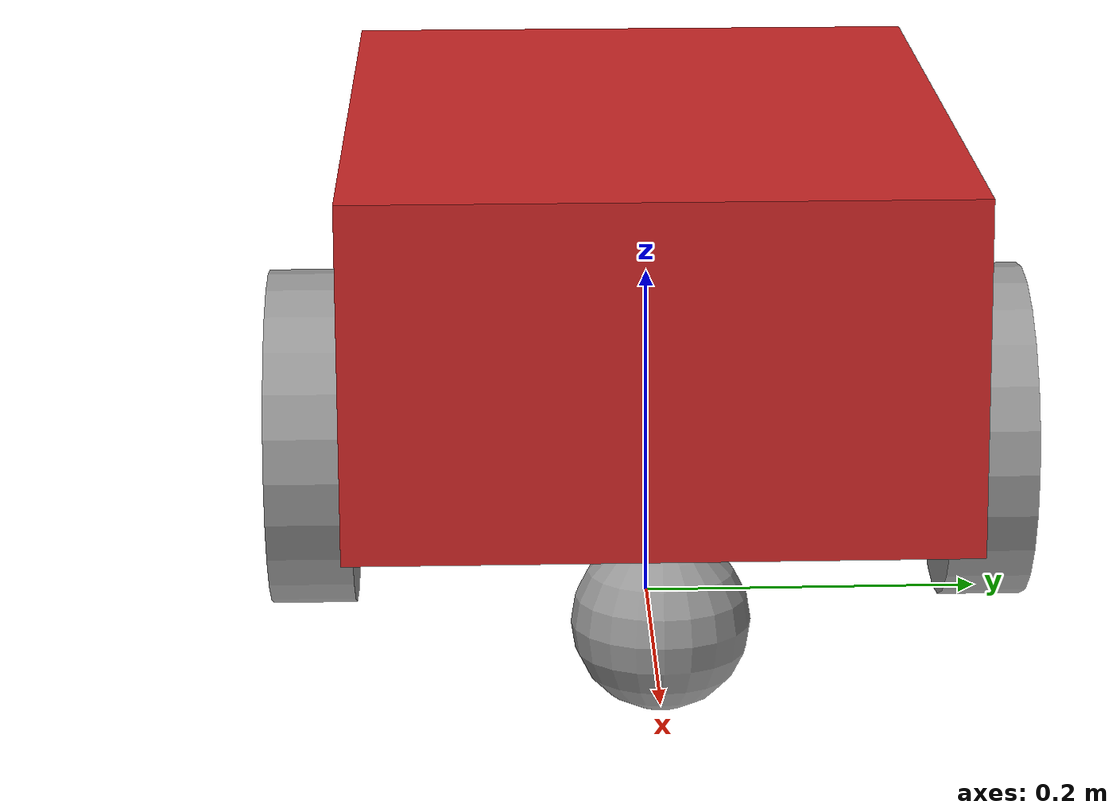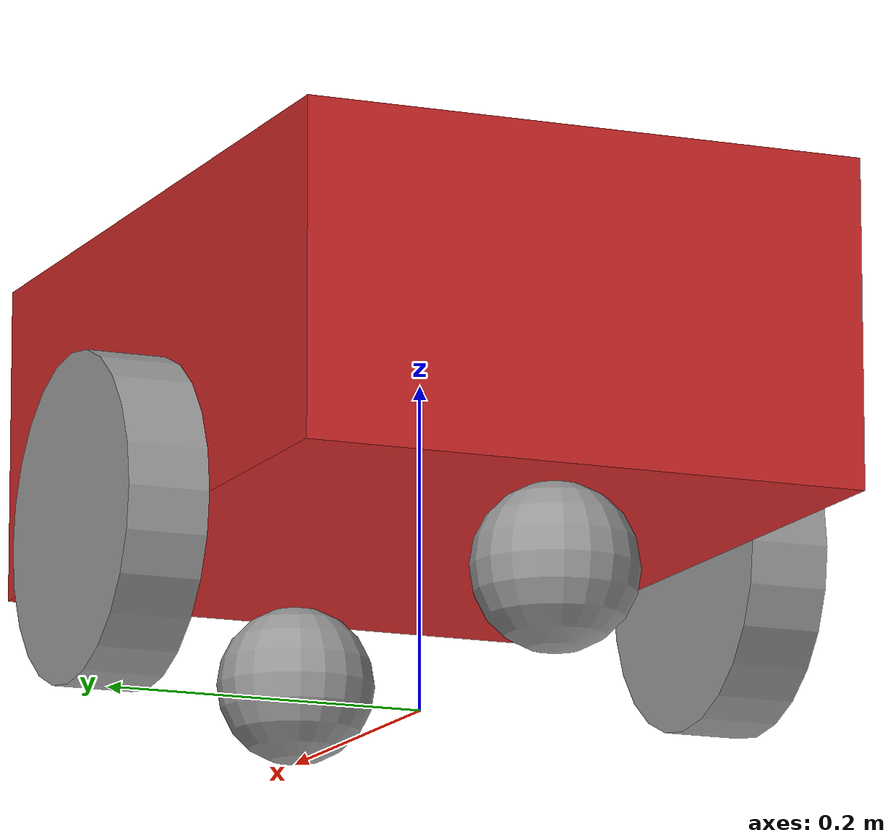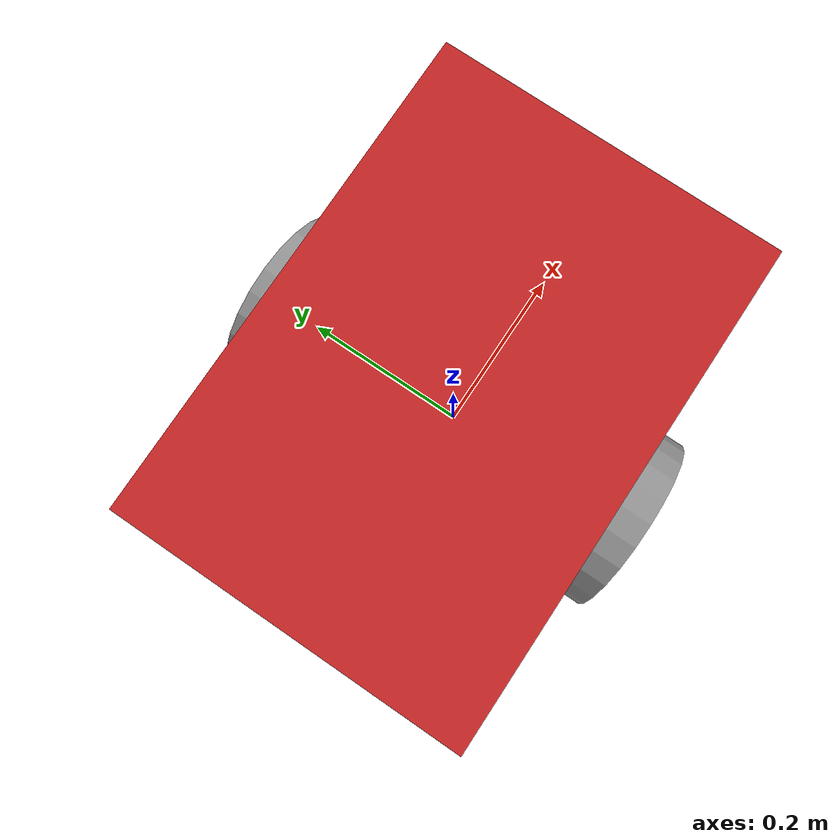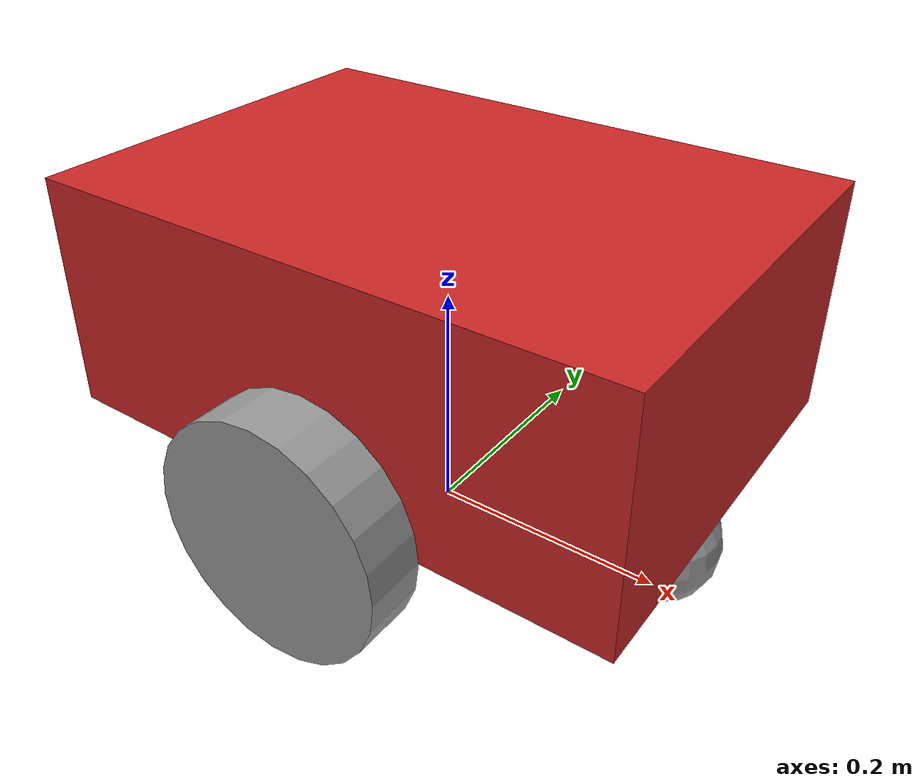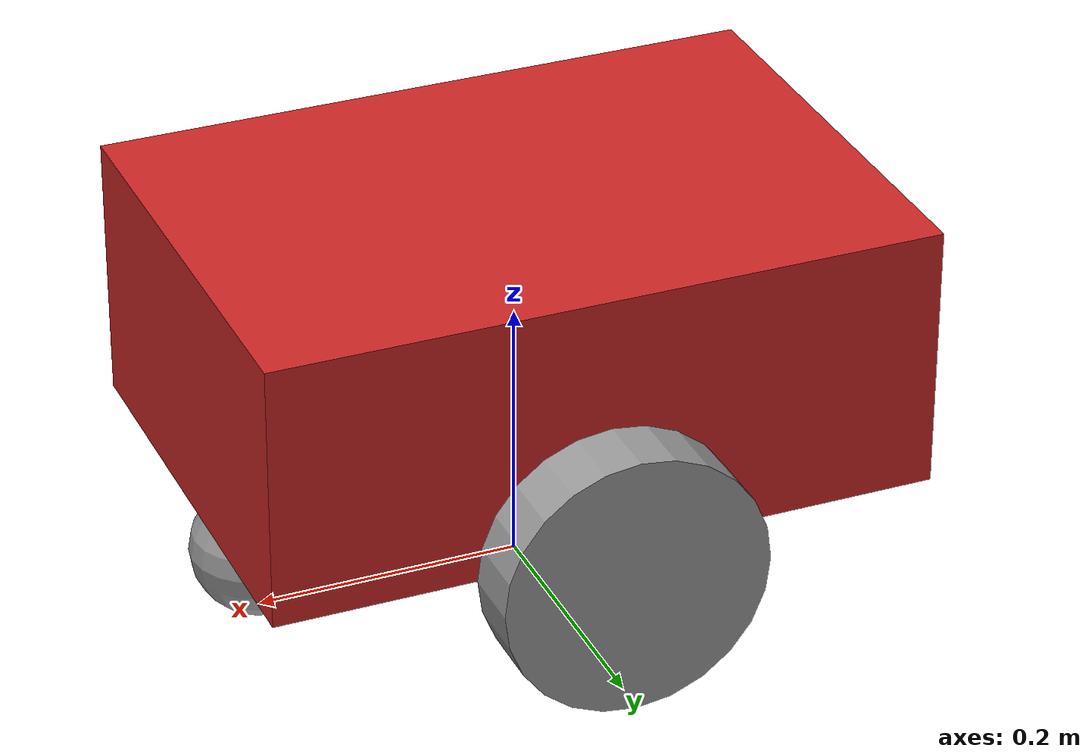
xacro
<?xml version="1.0"?>
<robot xmlns:xacro="http://www.ros.org/wiki/xacro" name="robot_car">

  <xacro:include filename="$(find robot_description)/urdf/robot_car.urdf.xacro" />
  <xacro:include filename="$(find robot_sim)/urdf/sim_camera.xacro" />
  <xacro:include filename="$(find robot_sim)/urdf/sim_ground_truth.xacro" />
  <xacro:include filename="$(find robot_sim)/urdf/ros2_control.xacro"/>

</robot>

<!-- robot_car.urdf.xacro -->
<robot xmlns:xacro="http://www.ros.org/wiki/xacro" name="robot_car">

  <xacro:include filename="$(find robot_description)/urdf/robot_base.xacro" />
  <xacro:include filename="$(find robot_description)/urdf/sensors/camera.xacro" />

  <xacro:robot_camera parent="base_link" xyz="0.14 0 0.07" rpy="0 0 0" />

</robot>

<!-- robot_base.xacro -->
<robot xmlns:xacro="http://www.ros.org/wiki/xacro">

    <xacro:property name="length" value="0.5" />
    <xacro:property name="width" value="0.35" />
    <xacro:property name="height" value="0.2" />

    <xacro:property name="mass" value="5.0" />

    <xacro:property name="wheel_mass" value="1.0" />

    <xacro:property name="wheel_radius" value="0.1" />
    <xacro:property name="wheel_width" value="0.05" />
    <xacro:property name="caster_wheel_radius" value="0.05" />

    <link name="base_link">
        <visual>
            <geometry>
                <box size="${length} ${width} ${height}" />
            </geometry>
            <origin xyz="0.0 0.0 ${height/2}" rpy="0.0 0.0 0.0" />
            <material name="red" />
        </visual>
        <xacro:box_inertia m="${mass}" x="${length}" y="${width}" z="${height}"
            o_xyz="0.0 0.0 ${height/2}" o_rpy="0.0 0.0 0.0" />
        <collision>
            <geometry>
                <box size="${length} ${width} ${height}" />
            </geometry>
            <origin xyz="0.0 0.0 ${height/2}" rpy="0.0 0.0 0.0" />
        </collision>
    </link>

    <link name="left_wheel">
        <visual>
            <geometry>
                <cylinder radius="${wheel_radius}" length="${wheel_width}" />
            </geometry>
            <origin xyz="0.0 0.0 0.0" rpy="${pi/2} 0.0 0.0" />
            <material name="grey" />
        </visual>
        <xacro:cylinder_inertia m="${wheel_mass}" r="${wheel_radius}" l="${wheel_width}"
            o_xyz="0.0 0.0 0.0" o_rpy="${pi/2} 0.0 0.0" />
        <collision>
            <geometry>
                <cylinder radius="${wheel_radius}" length="${wheel_width}" />
            </geometry>
            <origin xyz="0.0 0.0 0.0" rpy="${pi/2} 0.0 0.0" />
        </collision>
    </link>

    <link name="right_wheel">
        <visual>
            <geometry>
                <cylinder radius="${wheel_radius}" length="${wheel_width}" />
            </geometry>
            <origin xyz="0.0 0.0 0.0" rpy="${pi/2} 0.0 0.0" />
            <material name="grey" />
        </visual>
        <xacro:cylinder_inertia m="${wheel_mass}" r="${wheel_radius}" l="${wheel_width}"
            o_xyz="0.0 0.0 0.0" o_rpy="${pi/2} 0.0 0.0" />
        <collision>
            <geometry>
                <cylinder radius="${wheel_radius}" length="${wheel_width}" />
            </geometry>
            <origin xyz="0.0 0.0 0.0" rpy="${pi/2} 0.0 0.0" />
        </collision>
    </link>
    <link name="caster_wheel_link_front">
        <visual>
            <geometry>
                <sphere radius="${caster_wheel_radius}" />
            </geometry>
            <origin xyz="0.0 0.0 0.0" rpy="0.0 0.0 0.0" />
            <material name="grey" />
        </visual>
        <xacro:sphere_inertia m="0.5" r="${caster_wheel_radius}" o_xyz="0.0 0.0 0.0"
            o_rpy="0.0 0.0 0.0" />
        <collision>
            <geometry>
                <sphere radius="${caster_wheel_radius}" />
            </geometry>
            <origin xyz="0.0 0.0 0.0" rpy="0.0 0.0 0.0" />
            <material name="grey" />
        </collision>
    </link>

    <link name="caster_wheel_link_back">
        <visual>
            <geometry>
                <sphere radius="${caster_wheel_radius}" />
            </geometry>
            <origin xyz="0.0 0.0 0.0" rpy="0.0 0.0 0.0" />
            <material name="grey" />
        </visual>
        <xacro:sphere_inertia m="0.5" r="${caster_wheel_radius}" o_xyz="0.0 0.0 0.0"
            o_rpy="0.0 0.0 0.0" />
        <collision>
            <geometry>
                <sphere radius="${caster_wheel_radius}" />
            </geometry>
            <origin xyz="0.0 0.0 0.0" rpy="0.0 0.0 0.0" />
            <material name="grey" />
        </collision>
    </link>

    <link name="base_footprint"></link>

    <joint name="base_joint" type="fixed">
        <parent link="base_footprint" />
        <child link="base_link" />
        <origin xyz="0.0 0.0 ${height/2}" rpy="0.0 0.0 0.0" />
    </joint>

    <!-- Left wheel joint - centered at robot length axis for better kinematics -->
    <joint name="left_wheel_joint" type="continuous">
        <parent link="base_link" />
        <child link="left_wheel" />
        <origin xyz="0.0 ${(width/2) + (wheel_width/2)} 0.0" rpy="0.0 0.0 0.0" />
        <axis xyz="0.0 1.0 0.0" />
    </joint>

    <!-- Right wheel joint - centered at robot length axis for better kinematics -->
    <joint name="right_wheel_joint" type="continuous">
        <parent link="base_link" />
        <child link="right_wheel" />
        <origin xyz="0.0 ${-((width/2) + (wheel_width/2))} 0.0" rpy="0.0 0.0 0.0" />
        <axis xyz="0.0 1.0 0.0" />
    </joint>

    <!-- Front caster wheel joint -->
    <joint name="caster_wheel_joint_front" type="fixed">
        <parent link="base_link" />
        <child link="caster_wheel_link_front" />
        <origin xyz="${(length/2) - 0.05} 0.0 ${-(caster_wheel_radius)}" rpy="0.0 0.0 0.0" />
    </joint>

    <!-- Back caster wheel joint -->
    <joint name="caster_wheel_joint_back" type="fixed">
        <parent link="base_link" />
        <child link="caster_wheel_link_back" />
        <origin xyz="${-(length/2) + 0.05} 0.0 ${-(caster_wheel_radius)}" rpy="0.0 0.0 0.0" />
    </joint>

    <!-- Gazebo plugins and materials -->
    <gazebo reference="base_link">
        <material>Gazebo/Red</material>
    </gazebo>

</robot>

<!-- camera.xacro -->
<robot xmlns:xacro="http://www.ros.org/wiki/xacro">

  <xacro:macro name="robot_camera" params="parent xyz rpy">

    <link name="camera_link">
      <visual>
        <geometry><box size="0.035 0.025 0.025"/></geometry>
        <material name="gray"/>
      </visual>
      <collision><geometry><box size="0.035 0.025 0.025"/></geometry></collision>
      <inertial>
        <mass value="0.03"/>
        <inertia ixx="0.000003" ixy="0.0" ixz="0.0" iyy="0.000005" iyz="0.0" izz="0.000006"/>
      </inertial>
    </link>

    <joint name="${parent}_to_camera" type="fixed">
      <parent link="${parent}"/>
      <child link="camera_link"/>
      <origin xyz="${xyz}" rpy="${rpy}"/>
    </joint>

    <link name="camera_optical_frame"/>
    <joint name="camera_link_to_camera_optical_frame" type="fixed">
      <parent link="camera_link"/>
      <child link="camera_optical_frame"/>
      <origin xyz="0 0 0" rpy="-1.5708 0 -1.5708"/>
    </joint>

    </xacro:macro>
</robot>
